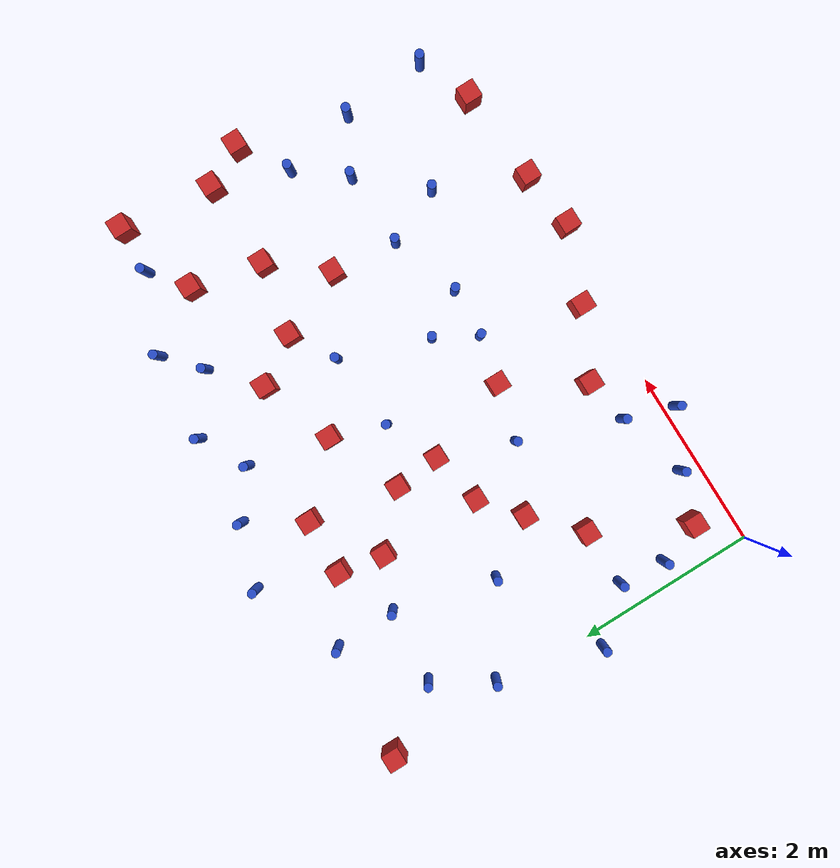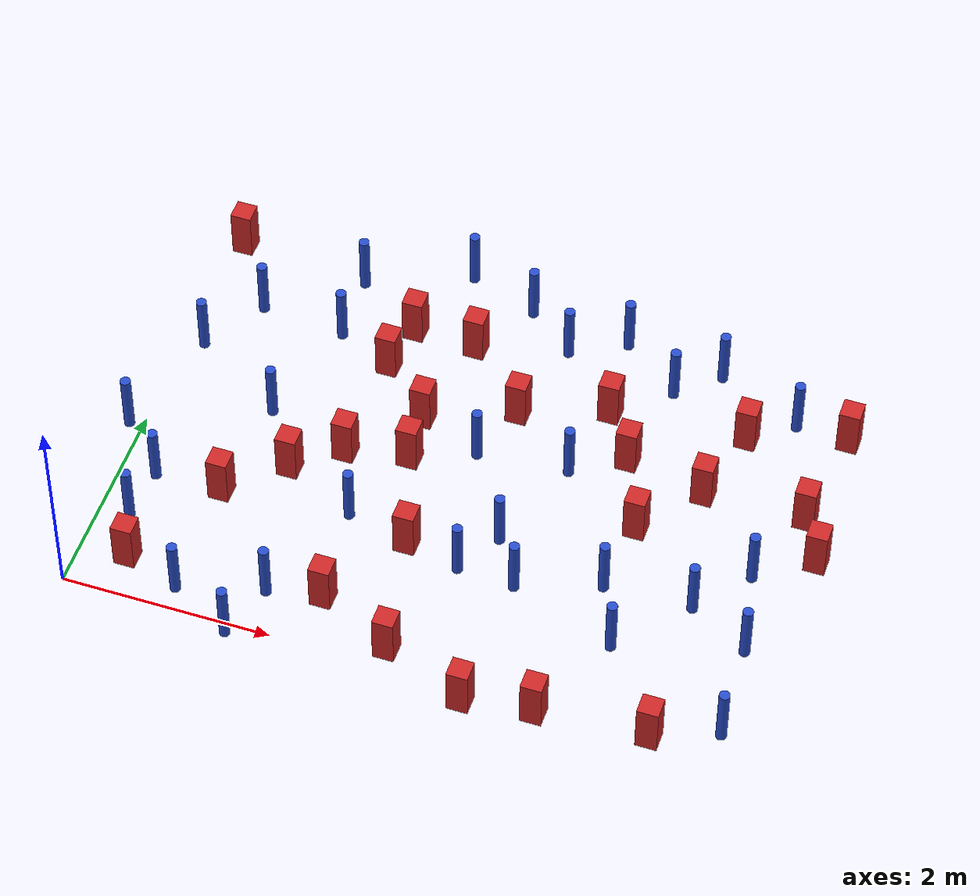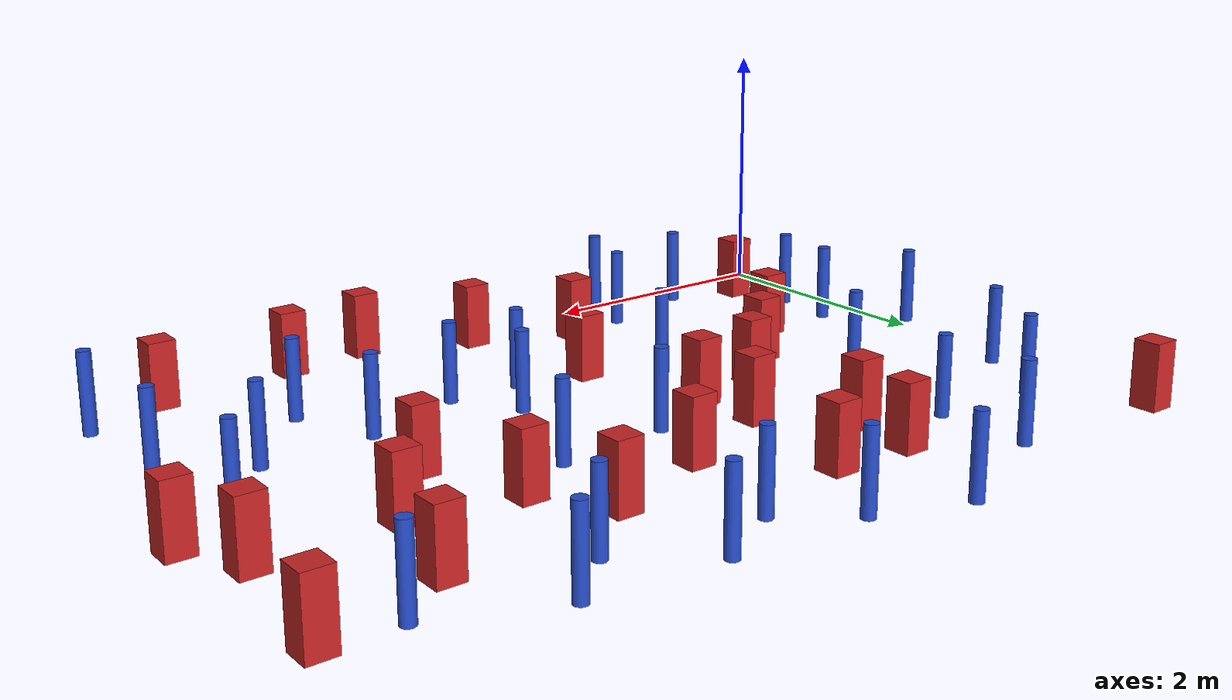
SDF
<sdf version="1.6">
 <model name="dense_8">
  <model name="square_post_obstacle2">
   <static>true</static>
   <pose>2.45403011501 2.84470592228 -6.11067671241e-07 -5.50515727128e-06 -8.79689657224e-07 2.37013304536e-05</pose>
   <link name="link">
    <pose>0 0 0.25 0 -0 0</pose>
    <inertial>
     <mass>100</mass>
     <inertia>
      <ixx>0.166667</ixx>
      <ixy>0</ixy>
      <ixz>0</ixz>
      <iyy>0.166667</iyy>
      <iyz>0</iyz>
      <izz>0.166667</izz>
     </inertia>
    </inertial>
    <collision name="collision"><geometry><box><size>.2 .2 .5</size></box></geometry></collision>
    <visual name="visual">
     <geometry><box><size>.2 .2 .5</size></box></geometry>
     <material>
      <script><name>Gazebo/Red</name><uri>file://media/materials/scripts/gazebo.material</uri></script>
     </material>
    </visual>
   </link>
  </model>
  <model name="pole_obstacle3">
   <static>true</static>
   <pose>1.60951620101 -0.0953287953253 -9.47619616065e-06 5.49618799737e-07 2.36310414064e-07 -1.55090534798e-07</pose>
   <link name="link">
    <pose>0 0 0.3 0 -0 0</pose>
    <inertial>
     <mass>1</mass>
     <inertia><ixx>0.145833</ixx><ixy>0</ixy><ixz>0</ixz><iyy>0.145833</iyy><iyz>0</iyz><izz>0.125</izz></inertia>
    </inertial>
    <collision name="collision">
     <geometry><cylinder><radius>0.05</radius><length>.6</length></cylinder></geometry>
    </collision>
    <visual name="visual">
     <geometry><cylinder><radius>0.05</radius><length>.6</length></cylinder></geometry>
     <material>
      <script><name>Gazebo/Blue</name><uri>file://media/materials/scripts/gazebo.material</uri></script>
     </material>
    </visual>
   </link>
  </model>
  <model name="square_post_obstacle8">
   <static>true</static>
   <pose>3.04568365007 0.186025562738 -6.11067671241e-07 -5.50515727128e-06 -8.79689657224e-07 2.37013304536e-05</pose>
   <link name="link">
    <pose>0 0 0.25 0 -0 0</pose>
    <inertial>
     <mass>100</mass>
     <inertia>
      <ixx>0.166667</ixx>
      <ixy>0</ixy>
      <ixz>0</ixz>
      <iyy>0.166667</iyy>
      <iyz>0</iyz>
      <izz>0.166667</izz>
     </inertia>
    </inertial>
    <collision name="collision"><geometry><box><size>.2 .2 .5</size></box></geometry></collision>
    <visual name="visual">
     <geometry><box><size>.2 .2 .5</size></box></geometry>
     <material>
      <script><name>Gazebo/Red</name><uri>file://media/materials/scripts/gazebo.material</uri></script>
     </material>
    </visual>
   </link>
  </model>
  <model name="square_post_obstacle9">
   <static>true</static>
   <pose>2.64092734206 3.82460072823 -6.11067671241e-07 -5.50515727128e-06 -8.79689657224e-07 2.37013304536e-05</pose>
   <link name="link">
    <pose>0 0 0.25 0 -0 0</pose>
    <inertial>
     <mass>100</mass>
     <inertia>
      <ixx>0.166667</ixx>
      <ixy>0</ixy>
      <ixz>0</ixz>
      <iyy>0.166667</iyy>
      <iyz>0</iyz>
      <izz>0.166667</izz>
     </inertia>
    </inertial>
    <collision name="collision"><geometry><box><size>.2 .2 .5</size></box></geometry></collision>
    <visual name="visual">
     <geometry><box><size>.2 .2 .5</size></box></geometry>
     <material>
      <script><name>Gazebo/Red</name><uri>file://media/materials/scripts/gazebo.material</uri></script>
     </material>
    </visual>
   </link>
  </model>
  <model name="pole_obstacle9">
   <static>true</static>
   <pose>0.166897559963 3.05602028141 -9.4761961606e-06 5.49618799729e-07 2.36310413998e-07 -1.55090534824e-07</pose>
   <link name="link">
    <pose>0 0 0.3 0 -0 0</pose>
    <inertial>
     <mass>1</mass>
     <inertia><ixx>0.145833</ixx><ixy>0</ixy><ixz>0</ixz><iyy>0.145833</iyy><iyz>0</iyz><izz>0.125</izz></inertia>
    </inertial>
    <collision name="collision">
     <geometry><cylinder><radius>0.05</radius><length>.6</length></cylinder></geometry>
    </collision>
    <visual name="visual">
     <geometry><cylinder><radius>0.05</radius><length>.6</length></cylinder></geometry>
     <material>
      <script><name>Gazebo/Blue</name><uri>file://media/materials/scripts/gazebo.material</uri></script>
     </material>
    </visual>
   </link>
  </model>
  <model name="square_post_obstacle19">
   <static>true</static>
   <pose>4.50263359824 -0.0530470735372 -6.11067671241e-07 -5.50515727128e-06 -8.79689657224e-07 2.37013304536e-05</pose>
   <link name="link">
    <pose>0 0 0.25 0 -0 0</pose>
    <inertial>
     <mass>100</mass>
     <inertia>
      <ixx>0.166667</ixx>
      <ixy>0</ixy>
      <ixz>0</ixz>
      <iyy>0.166667</iyy>
      <iyz>0</iyz>
      <izz>0.166667</izz>
     </inertia>
    </inertial>
    <collision name="collision"><geometry><box><size>.2 .2 .5</size></box></geometry></collision>
    <visual name="visual">
     <geometry><box><size>.2 .2 .5</size></box></geometry>
     <material>
      <script><name>Gazebo/Red</name><uri>file://media/materials/scripts/gazebo.material</uri></script>
     </material>
    </visual>
   </link>
  </model>
  <model name="pole_obstacle11">
   <static>true</static>
   <pose>4.00027393497 4.34988775769 -9.47619616065e-06 5.49618799737e-07 2.36310414037e-07 -1.55090534814e-07</pose>
   <link name="link">
    <pose>0 0 0.3 0 -0 0</pose>
    <inertial>
     <mass>1</mass>
     <inertia><ixx>0.145833</ixx><ixy>0</ixy><ixz>0</ixz><iyy>0.145833</iyy><iyz>0</iyz><izz>0.125</izz></inertia>
    </inertial>
    <collision name="collision">
     <geometry><cylinder><radius>0.05</radius><length>.6</length></cylinder></geometry>
    </collision>
    <visual name="visual">
     <geometry><cylinder><radius>0.05</radius><length>.6</length></cylinder></geometry>
     <material>
      <script><name>Gazebo/Blue</name><uri>file://media/materials/scripts/gazebo.material</uri></script>
     </material>
    </visual>
   </link>
  </model>
  <model name="square_post_obstacle27">
   <static>true</static>
   <pose>2.30890300831 0.54974141371 -6.11067671241e-07 -5.50515727128e-06 -8.79689657224e-07 2.37013304536e-05</pose>
   <link name="link">
    <pose>0 0 0.25 0 -0 0</pose>
    <inertial>
     <mass>100</mass>
     <inertia>
      <ixx>0.166667</ixx>
      <ixy>0</ixy>
      <ixz>0</ixz>
      <iyy>0.166667</iyy>
      <iyz>0</iyz>
      <izz>0.166667</izz>
     </inertia>
    </inertial>
    <collision name="collision"><geometry><box><size>.2 .2 .5</size></box></geometry></collision>
    <visual name="visual">
     <geometry><box><size>.2 .2 .5</size></box></geometry>
     <material>
      <script><name>Gazebo/Red</name><uri>file://media/materials/scripts/gazebo.material</uri></script>
     </material>
    </visual>
   </link>
  </model>
  <model name="pole_obstacle22">
   <static>true</static>
   <pose>0.340326180801 1.39975027802 -9.47619616065e-06 5.49618799738e-07 2.3631041406e-07 -1.550905348e-07</pose>
   <link name="link">
    <pose>0 0 0.3 0 -0 0</pose>
    <inertial>
     <mass>1</mass>
     <inertia><ixx>0.145833</ixx><ixy>0</ixy><ixz>0</ixz><iyy>0.145833</iyy><iyz>0</iyz><izz>0.125</izz></inertia>
    </inertial>
    <collision name="collision">
     <geometry><cylinder><radius>0.05</radius><length>.6</length></cylinder></geometry>
    </collision>
    <visual name="visual">
     <geometry><cylinder><radius>0.05</radius><length>.6</length></cylinder></geometry>
     <material>
      <script><name>Gazebo/Blue</name><uri>file://media/materials/scripts/gazebo.material</uri></script>
     </material>
    </visual>
   </link>
  </model>
  <model name="pole_obstacle27">
   <static>true</static>
   <pose>1.35018914964 4.2849601545 -9.47619616065e-06 5.49618799737e-07 2.36310414061e-07 -1.550905348e-07</pose>
   <link name="link">
    <pose>0 0 0.3 0 -0 0</pose>
    <inertial>
     <mass>1</mass>
     <inertia><ixx>0.145833</ixx><ixy>0</ixy><ixz>0</ixz><iyy>0.145833</iyy><iyz>0</iyz><izz>0.125</izz></inertia>
    </inertial>
    <collision name="collision">
     <geometry><cylinder><radius>0.05</radius><length>.6</length></cylinder></geometry>
    </collision>
    <visual name="visual">
     <geometry><cylinder><radius>0.05</radius><length>.6</length></cylinder></geometry>
     <material>
      <script><name>Gazebo/Blue</name><uri>file://media/materials/scripts/gazebo.material</uri></script>
     </material>
    </visual>
   </link>
  </model>
  <model name="square_post_obstacle41">
   <static>true</static>
   <pose>4.42364671763 2.96260429846 -6.11067671241e-07 -5.50515727128e-06 -8.79689657224e-07 2.37013304536e-05</pose>
   <link name="link">
    <pose>0 0 0.25 0 -0 0</pose>
    <inertial>
     <mass>100</mass>
     <inertia>
      <ixx>0.166667</ixx>
      <ixy>0</ixy>
      <ixz>0</ixz>
      <iyy>0.166667</iyy>
      <iyz>0</iyz>
      <izz>0.166667</izz>
     </inertia>
    </inertial>
    <collision name="collision"><geometry><box><size>.2 .2 .5</size></box></geometry></collision>
    <visual name="visual">
     <geometry><box><size>.2 .2 .5</size></box></geometry>
     <material>
      <script><name>Gazebo/Red</name><uri>file://media/materials/scripts/gazebo.material</uri></script>
     </material>
    </visual>
   </link>
  </model>
  <model name="pole_obstacle50">
   <static>true</static>
   <pose>1.08501009627 2.47537777412 -9.47619616065e-06 5.49618799737e-07 2.36310414062e-07 -1.55090534798e-07</pose>
   <link name="link">
    <pose>0 0 0.3 0 -0 0</pose>
    <inertial>
     <mass>1</mass>
     <inertia><ixx>0.145833</ixx><ixy>0</ixy><ixz>0</ixz><iyy>0.145833</iyy><iyz>0</iyz><izz>0.125</izz></inertia>
    </inertial>
    <collision name="collision">
     <geometry><cylinder><radius>0.05</radius><length>.6</length></cylinder></geometry>
    </collision>
    <visual name="visual">
     <geometry><cylinder><radius>0.05</radius><length>.6</length></cylinder></geometry>
     <material>
      <script><name>Gazebo/Blue</name><uri>file://media/materials/scripts/gazebo.material</uri></script>
     </material>
    </visual>
   </link>
  </model>
  <model name="pole_obstacle54">
   <static>true</static>
   <pose>-0.133966401994 1.90876942471 -9.47619616065e-06 5.49618799737e-07 2.36310414067e-07 -1.55090534796e-07</pose>
   <link name="link">
    <pose>0 0 0.3 0 -0 0</pose>
    <inertial>
     <mass>1</mass>
     <inertia><ixx>0.145833</ixx><ixy>0</ixy><ixz>0</ixz><iyy>0.145833</iyy><iyz>0</iyz><izz>0.125</izz></inertia>
    </inertial>
    <collision name="collision">
     <geometry><cylinder><radius>0.05</radius><length>.6</length></cylinder></geometry>
    </collision>
    <visual name="visual">
     <geometry><cylinder><radius>0.05</radius><length>.6</length></cylinder></geometry>
     <material>
      <script><name>Gazebo/Blue</name><uri>file://media/materials/scripts/gazebo.material</uri></script>
     </material>
    </visual>
   </link>
  </model>
  <model name="pole_obstacle55">
   <static>true</static>
   <pose>0.288868539936 0.885942822185 -9.47619616065e-06 5.49618799738e-07 2.36310414056e-07 -1.55090534803e-07</pose>
   <link name="link">
    <pose>0 0 0.3 0 -0 0</pose>
    <inertial>
     <mass>1</mass>
     <inertia><ixx>0.145833</ixx><ixy>0</ixy><ixz>0</ixz><iyy>0.145833</iyy><iyz>0</iyz><izz>0.125</izz></inertia>
    </inertial>
    <collision name="collision">
     <geometry><cylinder><radius>0.05</radius><length>.6</length></cylinder></geometry>
    </collision>
    <visual name="visual">
     <geometry><cylinder><radius>0.05</radius><length>.6</length></cylinder></geometry>
     <material>
      <script><name>Gazebo/Blue</name><uri>file://media/materials/scripts/gazebo.material</uri></script>
     </material>
    </visual>
   </link>
  </model>
  <model name="square_post_obstacle58">
   <static>true</static>
   <pose>4.73409323332 2.21882491592 -6.11067671241e-07 -5.50515727128e-06 -8.79689657224e-07 2.37013304536e-05</pose>
   <link name="link">
    <pose>0 0 0.25 0 -0 0</pose>
    <inertial>
     <mass>100</mass>
     <inertia>
      <ixx>0.166667</ixx>
      <ixy>0</ixy>
      <ixz>0</ixz>
      <iyy>0.166667</iyy>
      <iyz>0</iyz>
      <izz>0.166667</izz>
     </inertia>
    </inertial>
    <collision name="collision"><geometry><box><size>.2 .2 .5</size></box></geometry></collision>
    <visual name="visual">
     <geometry><box><size>.2 .2 .5</size></box></geometry>
     <material>
      <script><name>Gazebo/Red</name><uri>file://media/materials/scripts/gazebo.material</uri></script>
     </material>
    </visual>
   </link>
  </model>
  <model name="pole_obstacle57">
   <static>true</static>
   <pose>3.94204193358 2.67132849761 -9.47619616065e-06 5.49618799737e-07 2.36310414051e-07 -1.55090534807e-07</pose>
   <link name="link">
    <pose>0 0 0.3 0 -0 0</pose>
    <inertial>
     <mass>1</mass>
     <inertia><ixx>0.145833</ixx><ixy>0</ixy><ixz>0</ixz><iyy>0.145833</iyy><iyz>0</iyz><izz>0.125</izz></inertia>
    </inertial>
    <collision name="collision">
     <geometry><cylinder><radius>0.05</radius><length>.6</length></cylinder></geometry>
    </collision>
    <visual name="visual">
     <geometry><cylinder><radius>0.05</radius><length>.6</length></cylinder></geometry>
     <material>
      <script><name>Gazebo/Blue</name><uri>file://media/materials/scripts/gazebo.material</uri></script>
     </material>
    </visual>
   </link>
  </model>
  <model name="square_post_obstacle63">
   <static>true</static>
   <pose>1.48611725219 1.87298959567 -6.11067671241e-07 -5.50515727128e-06 -8.79689657224e-07 2.37013304536e-05</pose>
   <link name="link">
    <pose>0 0 0.25 0 -0 0</pose>
    <inertial>
     <mass>100</mass>
     <inertia>
      <ixx>0.166667</ixx>
      <ixy>0</ixy>
      <ixz>0</ixz>
      <iyy>0.166667</iyy>
      <iyz>0</iyz>
      <izz>0.166667</izz>
     </inertia>
    </inertial>
    <collision name="collision"><geometry><box><size>.2 .2 .5</size></box></geometry></collision>
    <visual name="visual">
     <geometry><box><size>.2 .2 .5</size></box></geometry>
     <material>
      <script><name>Gazebo/Red</name><uri>file://media/materials/scripts/gazebo.material</uri></script>
     </material>
    </visual>
   </link>
  </model>
  <model name="pole_obstacle61">
   <static>true</static>
   <pose>0.540656722937 3.66856565822 -9.47619616065e-06 5.49618799737e-07 2.36310414069e-07 -1.55090534796e-07</pose>
   <link name="link">
    <pose>0 0 0.3 0 -0 0</pose>
    <inertial>
     <mass>1</mass>
     <inertia><ixx>0.145833</ixx><ixy>0</ixy><ixz>0</ixz><iyy>0.145833</iyy><iyz>0</iyz><izz>0.125</izz></inertia>
    </inertial>
    <collision name="collision">
     <geometry><cylinder><radius>0.05</radius><length>.6</length></cylinder></geometry>
    </collision>
    <visual name="visual">
     <geometry><cylinder><radius>0.05</radius><length>.6</length></cylinder></geometry>
     <material>
      <script><name>Gazebo/Blue</name><uri>file://media/materials/scripts/gazebo.material</uri></script>
     </material>
    </visual>
   </link>
  </model>
  <model name="square_post_obstacle66">
   <static>true</static>
   <pose>3.2789490071 3.17853277757 -6.11067671241e-07 -5.50515727128e-06 -8.79689657224e-07 2.37013304536e-05</pose>
   <link name="link">
    <pose>0 0 0.25 0 -0 0</pose>
    <inertial>
     <mass>100</mass>
     <inertia>
      <ixx>0.166667</ixx>
      <ixy>0</ixy>
      <ixz>0</ixz>
      <iyy>0.166667</iyy>
      <iyz>0</iyz>
      <izz>0.166667</izz>
     </inertia>
    </inertial>
    <collision name="collision"><geometry><box><size>.2 .2 .5</size></box></geometry></collision>
    <visual name="visual">
     <geometry><box><size>.2 .2 .5</size></box></geometry>
     <material>
      <script><name>Gazebo/Red</name><uri>file://media/materials/scripts/gazebo.material</uri></script>
     </material>
    </visual>
   </link>
  </model>
  <model name="pole_obstacle66">
   <static>true</static>
   <pose>6.06449971869 1.20316697286 -9.47619616065e-06 5.49618799738e-07 2.36310414071e-07 -1.55090534796e-07</pose>
   <link name="link">
    <pose>0 0 0.3 0 -0 0</pose>
    <inertial>
     <mass>1</mass>
     <inertia><ixx>0.145833</ixx><ixy>0</ixy><ixz>0</ixz><iyy>0.145833</iyy><iyz>0</iyz><izz>0.125</izz></inertia>
    </inertial>
    <collision name="collision">
     <geometry><cylinder><radius>0.05</radius><length>.6</length></cylinder></geometry>
    </collision>
    <visual name="visual">
     <geometry><cylinder><radius>0.05</radius><length>.6</length></cylinder></geometry>
     <material>
      <script><name>Gazebo/Blue</name><uri>file://media/materials/scripts/gazebo.material</uri></script>
     </material>
    </visual>
   </link>
  </model>
  <model name="pole_obstacle68">
   <static>true</static>
   <pose>2.19670817189 1.53268188798 -9.47619616065e-06 5.49618799737e-07 2.36310414072e-07 -1.55090534793e-07</pose>
   <link name="link">
    <pose>0 0 0.3 0 -0 0</pose>
    <inertial>
     <mass>1</mass>
     <inertia><ixx>0.145833</ixx><ixy>0</ixy><ixz>0</ixz><iyy>0.145833</iyy><iyz>0</iyz><izz>0.125</izz></inertia>
    </inertial>
    <collision name="collision">
     <geometry><cylinder><radius>0.05</radius><length>.6</length></cylinder></geometry>
    </collision>
    <visual name="visual">
     <geometry><cylinder><radius>0.05</radius><length>.6</length></cylinder></geometry>
     <material>
      <script><name>Gazebo/Blue</name><uri>file://media/materials/scripts/gazebo.material</uri></script>
     </material>
    </visual>
   </link>
  </model>
  <model name="square_post_obstacle72">
   <static>true</static>
   <pose>2.81278803681 1.37709847575 -6.11067671241e-07 -5.50515727128e-06 -8.79689657224e-07 2.37013304536e-05</pose>
   <link name="link">
    <pose>0 0 0.25 0 -0 0</pose>
    <inertial>
     <mass>100</mass>
     <inertia>
      <ixx>0.166667</ixx>
      <ixy>0</ixy>
      <ixz>0</ixz>
      <iyy>0.166667</iyy>
      <iyz>0</iyz>
      <izz>0.166667</izz>
     </inertia>
    </inertial>
    <collision name="collision"><geometry><box><size>.2 .2 .5</size></box></geometry></collision>
    <visual name="visual">
     <geometry><box><size>.2 .2 .5</size></box></geometry>
     <material>
      <script><name>Gazebo/Red</name><uri>file://media/materials/scripts/gazebo.material</uri></script>
     </material>
    </visual>
   </link>
  </model>
  <model name="square_post_obstacle75">
   <static>true</static>
   <pose>1.9319834742 3.34947081611 -6.11067671241e-07 -5.50515727128e-06 -8.79689657224e-07 2.37013304536e-05</pose>
   <link name="link">
    <pose>0 0 0.25 0 -0 0</pose>
    <inertial>
     <mass>100</mass>
     <inertia>
      <ixx>0.166667</ixx>
      <ixy>0</ixy>
      <ixz>0</ixz>
      <iyy>0.166667</iyy>
      <iyz>0</iyz>
      <izz>0.166667</izz>
     </inertia>
    </inertial>
    <collision name="collision"><geometry><box><size>.2 .2 .5</size></box></geometry></collision>
    <visual name="visual">
     <geometry><box><size>.2 .2 .5</size></box></geometry>
     <material>
      <script><name>Gazebo/Red</name><uri>file://media/materials/scripts/gazebo.material</uri></script>
     </material>
    </visual>
   </link>
  </model>
  <model name="pole_obstacle73">
   <static>true</static>
   <pose>6.12441952049 0.264928909685 -9.47619616065e-06 5.49618799737e-07 2.3631041406e-07 -1.550905348e-07</pose>
   <link name="link">
    <pose>0 0 0.3 0 -0 0</pose>
    <inertial>
     <mass>1</mass>
     <inertia><ixx>0.145833</ixx><ixy>0</ixy><ixz>0</ixz><iyy>0.145833</iyy><iyz>0</iyz><izz>0.125</izz></inertia>
    </inertial>
    <collision name="collision">
     <geometry><cylinder><radius>0.05</radius><length>.6</length></cylinder></geometry>
    </collision>
    <visual name="visual">
     <geometry><cylinder><radius>0.05</radius><length>.6</length></cylinder></geometry>
     <material>
      <script><name>Gazebo/Blue</name><uri>file://media/materials/scripts/gazebo.material</uri></script>
     </material>
    </visual>
   </link>
  </model>
  <model name="pole_obstacle75">
   <static>true</static>
   <pose>5.89192949879 2.02843567691 -9.47619616065e-06 5.49618799737e-07 2.36310414065e-07 -1.55090534797e-07</pose>
   <link name="link">
    <pose>0 0 0.3 0 -0 0</pose>
    <inertial>
     <mass>1</mass>
     <inertia><ixx>0.145833</ixx><ixy>0</ixy><ixz>0</ixz><iyy>0.145833</iyy><iyz>0</iyz><izz>0.125</izz></inertia>
    </inertial>
    <collision name="collision">
     <geometry><cylinder><radius>0.05</radius><length>.6</length></cylinder></geometry>
    </collision>
    <visual name="visual">
     <geometry><cylinder><radius>0.05</radius><length>.6</length></cylinder></geometry>
     <material>
      <script><name>Gazebo/Blue</name><uri>file://media/materials/scripts/gazebo.material</uri></script>
     </material>
    </visual>
   </link>
  </model>
  <model name="pole_obstacle76">
   <static>true</static>
   <pose>3.48642598903 4.07143372269 -9.47619616065e-06 5.49618799738e-07 2.3631041406e-07 -1.55090534801e-07</pose>
   <link name="link">
    <pose>0 0 0.3 0 -0 0</pose>
    <inertial>
     <mass>1</mass>
     <inertia><ixx>0.145833</ixx><ixy>0</ixy><ixz>0</ixz><iyy>0.145833</iyy><iyz>0</iyz><izz>0.125</izz></inertia>
    </inertial>
    <collision name="collision">
     <geometry><cylinder><radius>0.05</radius><length>.6</length></cylinder></geometry>
    </collision>
    <visual name="visual">
     <geometry><cylinder><radius>0.05</radius><length>.6</length></cylinder></geometry>
     <material>
      <script><name>Gazebo/Blue</name><uri>file://media/materials/scripts/gazebo.material</uri></script>
     </material>
    </visual>
   </link>
  </model>
  <model name="pole_obstacle91">
   <static>true</static>
   <pose>4.91735121988 0.873259632748 -9.47619616065e-06 5.49618799737e-07 2.36310414061e-07 -1.550905348e-07</pose>
   <link name="link">
    <pose>0 0 0.3 0 -0 0</pose>
    <inertial>
     <mass>1</mass>
     <inertia><ixx>0.145833</ixx><ixy>0</ixy><ixz>0</ixz><iyy>0.145833</iyy><iyz>0</iyz><izz>0.125</izz></inertia>
    </inertial>
    <collision name="collision">
     <geometry><cylinder><radius>0.05</radius><length>.6</length></cylinder></geometry>
    </collision>
    <visual name="visual">
     <geometry><cylinder><radius>0.05</radius><length>.6</length></cylinder></geometry>
     <material>
      <script><name>Gazebo/Blue</name><uri>file://media/materials/scripts/gazebo.material</uri></script>
     </material>
    </visual>
   </link>
  </model>
  <model name="pole_obstacle95">
   <static>true</static>
   <pose>2.3296836631 4.69241225514 -9.47619616065e-06 5.49618799738e-07 2.3631041406e-07 -1.55090534801e-07</pose>
   <link name="link">
    <pose>0 0 0.3 0 -0 0</pose>
    <inertial>
     <mass>1</mass>
     <inertia><ixx>0.145833</ixx><ixy>0</ixy><ixz>0</ixz><iyy>0.145833</iyy><iyz>0</iyz><izz>0.125</izz></inertia>
    </inertial>
    <collision name="collision">
     <geometry><cylinder><radius>0.05</radius><length>.6</length></cylinder></geometry>
    </collision>
    <visual name="visual">
     <geometry><cylinder><radius>0.05</radius><length>.6</length></cylinder></geometry>
     <material>
      <script><name>Gazebo/Blue</name><uri>file://media/materials/scripts/gazebo.material</uri></script>
     </material>
    </visual>
   </link>
  </model>
  <model name="square_post_obstacle98">
   <static>true</static>
   <pose>4.09499771162 3.46620073269 -6.11067671241e-07 -5.50515727128e-06 -8.79689657224e-07 2.37013304536e-05</pose>
   <link name="link">
    <pose>0 0 0.25 0 -0 0</pose>
    <inertial>
     <mass>100</mass>
     <inertia>
      <ixx>0.166667</ixx>
      <ixy>0</ixy>
      <ixz>0</ixz>
      <iyy>0.166667</iyy>
      <iyz>0</iyz>
      <izz>0.166667</izz>
     </inertia>
    </inertial>
    <collision name="collision"><geometry><box><size>.2 .2 .5</size></box></geometry></collision>
    <visual name="visual">
     <geometry><box><size>.2 .2 .5</size></box></geometry>
     <material>
      <script><name>Gazebo/Red</name><uri>file://media/materials/scripts/gazebo.material</uri></script>
     </material>
    </visual>
   </link>
  </model>
  <model name="pole_obstacle113">
   <static>true</static>
   <pose>1.00548059532 0.22671719849 -9.47619616065e-06 5.49618799738e-07 2.36310414064e-07 -1.55090534797e-07</pose>
   <link name="link">
    <pose>0 0 0.3 0 -0 0</pose>
    <inertial>
     <mass>1</mass>
     <inertia><ixx>0.145833</ixx><ixy>0</ixy><ixz>0</ixz><iyy>0.145833</iyy><iyz>0</iyz><izz>0.125</izz></inertia>
    </inertial>
    <collision name="collision">
     <geometry><cylinder><radius>0.05</radius><length>.6</length></cylinder></geometry>
    </collision>
    <visual name="visual">
     <geometry><cylinder><radius>0.05</radius><length>.6</length></cylinder></geometry>
     <material>
      <script><name>Gazebo/Blue</name><uri>file://media/materials/scripts/gazebo.material</uri></script>
     </material>
    </visual>
   </link>
  </model>
  <model name="square_post_obstacle109">
   <static>true</static>
   <pose>6.39985033564 2.36949017189 -6.11067671241e-07 -5.50515727128e-06 -8.79689657224e-07 2.37013304536e-05</pose>
   <link name="link">
    <pose>0 0 0.25 0 -0 0</pose>
    <inertial>
     <mass>100</mass>
     <inertia>
      <ixx>0.166667</ixx>
      <ixy>0</ixy>
      <ixz>0</ixz>
      <iyy>0.166667</iyy>
      <iyz>0</iyz>
      <izz>0.166667</izz>
     </inertia>
    </inertial>
    <collision name="collision"><geometry><box><size>.2 .2 .5</size></box></geometry></collision>
    <visual name="visual">
     <geometry><box><size>.2 .2 .5</size></box></geometry>
     <material>
      <script><name>Gazebo/Red</name><uri>file://media/materials/scripts/gazebo.material</uri></script>
     </material>
    </visual>
   </link>
  </model>
  <model name="pole_obstacle123">
   <static>true</static>
   <pose>3.0117730331 4.44617282377 -9.47619616065e-06 5.49618799738e-07 2.3631041406e-07 -1.55090534801e-07</pose>
   <link name="link">
    <pose>0 0 0.3 0 -0 0</pose>
    <inertial>
     <mass>1</mass>
     <inertia><ixx>0.145833</ixx><ixy>0</ixy><ixz>0</ixz><iyy>0.145833</iyy><iyz>0</iyz><izz>0.125</izz></inertia>
    </inertial>
    <collision name="collision">
     <geometry><cylinder><radius>0.05</radius><length>.6</length></cylinder></geometry>
    </collision>
    <visual name="visual">
     <geometry><cylinder><radius>0.05</radius><length>.6</length></cylinder></geometry>
     <material>
      <script><name>Gazebo/Blue</name><uri>file://media/materials/scripts/gazebo.material</uri></script>
     </material>
    </visual>
   </link>
  </model>
  <model name="square_post_obstacle116">
   <static>true</static>
   <pose>5.53704041023 0.0246563115403 -6.11067671241e-07 -5.50515727128e-06 -8.79689657224e-07 2.37013304536e-05</pose>
   <link name="link">
    <pose>0 0 0.25 0 -0 0</pose>
    <inertial>
     <mass>100</mass>
     <inertia>
      <ixx>0.166667</ixx>
      <ixy>0</ixy>
      <ixz>0</ixz>
      <iyy>0.166667</iyy>
      <iyz>0</iyz>
      <izz>0.166667</izz>
     </inertia>
    </inertial>
    <collision name="collision"><geometry><box><size>.2 .2 .5</size></box></geometry></collision>
    <visual name="visual">
     <geometry><box><size>.2 .2 .5</size></box></geometry>
     <material>
      <script><name>Gazebo/Red</name><uri>file://media/materials/scripts/gazebo.material</uri></script>
     </material>
    </visual>
   </link>
  </model>
  <model name="square_post_obstacle117">
   <static>true</static>
   <pose>5.39380302013 3.57061827399 -6.11067671241e-07 -5.50515727128e-06 -8.79689657224e-07 2.37013304536e-05</pose>
   <link name="link">
    <pose>0 0 0.25 0 -0 0</pose>
    <inertial>
     <mass>100</mass>
     <inertia>
      <ixx>0.166667</ixx>
      <ixy>0</ixy>
      <ixz>0</ixz>
      <iyy>0.166667</iyy>
      <iyz>0</iyz>
      <izz>0.166667</izz>
     </inertia>
    </inertial>
    <collision name="collision"><geometry><box><size>.2 .2 .5</size></box></geometry></collision>
    <visual name="visual">
     <geometry><box><size>.2 .2 .5</size></box></geometry>
     <material>
      <script><name>Gazebo/Red</name><uri>file://media/materials/scripts/gazebo.material</uri></script>
     </material>
    </visual>
   </link>
  </model>
  <model name="square_post_obstacle121">
   <static>true</static>
   <pose>0.0754675092042 4.38259778923 -6.11067671241e-07 -5.50515727128e-06 -8.79689657224e-07 2.37013304536e-05</pose>
   <link name="link">
    <pose>0 0 0.25 0 -0 0</pose>
    <inertial>
     <mass>100</mass>
     <inertia>
      <ixx>0.166667</ixx>
      <ixy>0</ixy>
      <ixz>0</ixz>
      <iyy>0.166667</iyy>
      <iyz>0</iyz>
      <izz>0.166667</izz>
     </inertia>
    </inertial>
    <collision name="collision"><geometry><box><size>.2 .2 .5</size></box></geometry></collision>
    <visual name="visual">
     <geometry><box><size>.2 .2 .5</size></box></geometry>
     <material>
      <script><name>Gazebo/Red</name><uri>file://media/materials/scripts/gazebo.material</uri></script>
     </material>
    </visual>
   </link>
  </model>
  <model name="square_post_obstacle128">
   <static>true</static>
   <pose>0.989676258008 1.41154958317 -6.11067671241e-07 -5.50515727128e-06 -8.79689657224e-07 2.37013304536e-05</pose>
   <link name="link">
    <pose>0 0 0.25 0 -0 0</pose>
    <inertial>
     <mass>100</mass>
     <inertia>
      <ixx>0.166667</ixx>
      <ixy>0</ixy>
      <ixz>0</ixz>
      <iyy>0.166667</iyy>
      <iyz>0</iyz>
      <izz>0.166667</izz>
     </inertia>
    </inertial>
    <collision name="collision"><geometry><box><size>.2 .2 .5</size></box></geometry></collision>
    <visual name="visual">
     <geometry><box><size>.2 .2 .5</size></box></geometry>
     <material>
      <script><name>Gazebo/Red</name><uri>file://media/materials/scripts/gazebo.material</uri></script>
     </material>
    </visual>
   </link>
  </model>
  <model name="pole_obstacle155">
   <static>true</static>
   <pose>5.48355185224 1.51869304675 -9.47619616065e-06 5.49618799738e-07 2.36310414071e-07 -1.55090534796e-07</pose>
   <link name="link">
    <pose>0 0 0.3 0 -0 0</pose>
    <inertial>
     <mass>1</mass>
     <inertia><ixx>0.145833</ixx><ixy>0</ixy><ixz>0</ixz><iyy>0.145833</iyy><iyz>0</iyz><izz>0.125</izz></inertia>
    </inertial>
    <collision name="collision">
     <geometry><cylinder><radius>0.05</radius><length>.6</length></cylinder></geometry>
    </collision>
    <visual name="visual">
     <geometry><cylinder><radius>0.05</radius><length>.6</length></cylinder></geometry>
     <material>
      <script><name>Gazebo/Blue</name><uri>file://media/materials/scripts/gazebo.material</uri></script>
     </material>
    </visual>
   </link>
  </model>
  <model name="pole_obstacle160">
   <static>true</static>
   <pose>4.65492944159 1.4909090895 -9.47619616065e-06 5.49618799738e-07 2.36310414071e-07 -1.55090534796e-07</pose>
   <link name="link">
    <pose>0 0 0.3 0 -0 0</pose>
    <inertial>
     <mass>1</mass>
     <inertia><ixx>0.145833</ixx><ixy>0</ixy><ixz>0</ixz><iyy>0.145833</iyy><iyz>0</iyz><izz>0.125</izz></inertia>
    </inertial>
    <collision name="collision">
     <geometry><cylinder><radius>0.05</radius><length>.6</length></cylinder></geometry>
    </collision>
    <visual name="visual">
     <geometry><cylinder><radius>0.05</radius><length>.6</length></cylinder></geometry>
     <material>
      <script><name>Gazebo/Blue</name><uri>file://media/materials/scripts/gazebo.material</uri></script>
     </material>
    </visual>
   </link>
  </model>
  <model name="square_post_obstacle156">
   <static>true</static>
   <pose>6.30170269562 3.84891209482 -6.11067671241e-07 -5.50515727128e-06 -8.79689657224e-07 2.37013304536e-05</pose>
   <link name="link">
    <pose>0 0 0.25 0 -0 0</pose>
    <inertial>
     <mass>100</mass>
     <inertia>
      <ixx>0.166667</ixx>
      <ixy>0</ixy>
      <ixz>0</ixz>
      <iyy>0.166667</iyy>
      <iyz>0</iyz>
      <izz>0.166667</izz>
     </inertia>
    </inertial>
    <collision name="collision"><geometry><box><size>.2 .2 .5</size></box></geometry></collision>
    <visual name="visual">
     <geometry><box><size>.2 .2 .5</size></box></geometry>
     <material>
      <script><name>Gazebo/Red</name><uri>file://media/materials/scripts/gazebo.material</uri></script>
     </material>
    </visual>
   </link>
  </model>
  <model name="pole_obstacle166">
   <static>true</static>
   <pose>3.88949240759 1.23049291903 -9.47619616065e-06 5.49618799737e-07 2.36310414072e-07 -1.55090534793e-07</pose>
   <link name="link">
    <pose>0 0 0.3 0 -0 0</pose>
    <inertial>
     <mass>1</mass>
     <inertia><ixx>0.145833</ixx><ixy>0</ixy><ixz>0</ixz><iyy>0.145833</iyy><iyz>0</iyz><izz>0.125</izz></inertia>
    </inertial>
    <collision name="collision">
     <geometry><cylinder><radius>0.05</radius><length>.6</length></cylinder></geometry>
    </collision>
    <visual name="visual">
     <geometry><cylinder><radius>0.05</radius><length>.6</length></cylinder></geometry>
     <material>
      <script><name>Gazebo/Blue</name><uri>file://media/materials/scripts/gazebo.material</uri></script>
     </material>
    </visual>
   </link>
  </model>
  <model name="square_post_obstacle160">
   <static>true</static>
   <pose>3.85158098312 -0.136917456022 -6.11067671241e-07 -5.50515727128e-06 -8.79689657224e-07 2.37013304536e-05</pose>
   <link name="link">
    <pose>0 0 0.25 0 -0 0</pose>
    <inertial>
     <mass>100</mass>
     <inertia>
      <ixx>0.166667</ixx>
      <ixy>0</ixy>
      <ixz>0</ixz>
      <iyy>0.166667</iyy>
      <iyz>0</iyz>
      <izz>0.166667</izz>
     </inertia>
    </inertial>
    <collision name="collision"><geometry><box><size>.2 .2 .5</size></box></geometry></collision>
    <visual name="visual">
     <geometry><box><size>.2 .2 .5</size></box></geometry>
     <material>
      <script><name>Gazebo/Red</name><uri>file://media/materials/scripts/gazebo.material</uri></script>
     </material>
    </visual>
   </link>
  </model>
  <model name="square_post_obstacle161">
   <static>true</static>
   <pose>2.02180369748 3.84964573999 -6.11067671241e-07 -5.50515727128e-06 -8.79689657224e-07 2.37013304536e-05</pose>
   <link name="link">
    <pose>0 0 0.25 0 -0 0</pose>
    <inertial>
     <mass>100</mass>
     <inertia>
      <ixx>0.166667</ixx>
      <ixy>0</ixy>
      <ixz>0</ixz>
      <iyy>0.166667</iyy>
      <iyz>0</iyz>
      <izz>0.166667</izz>
     </inertia>
    </inertial>
    <collision name="collision"><geometry><box><size>.2 .2 .5</size></box></geometry></collision>
    <visual name="visual">
     <geometry><box><size>.2 .2 .5</size></box></geometry>
     <material>
      <script><name>Gazebo/Red</name><uri>file://media/materials/scripts/gazebo.material</uri></script>
     </material>
    </visual>
   </link>
  </model>
  <model name="pole_obstacle173">
   <static>true</static>
   <pose>4.96482589029 4.24393029031 -9.47619616065e-06 5.49618799737e-07 2.36310414037e-07 -1.55090534814e-07</pose>
   <link name="link">
    <pose>0 0 0.3 0 -0 0</pose>
    <inertial>
     <mass>1</mass>
     <inertia><ixx>0.145833</ixx><ixy>0</ixy><ixz>0</ixz><iyy>0.145833</iyy><iyz>0</iyz><izz>0.125</izz></inertia>
    </inertial>
    <collision name="collision">
     <geometry><cylinder><radius>0.05</radius><length>.6</length></cylinder></geometry>
    </collision>
    <visual name="visual">
     <geometry><cylinder><radius>0.05</radius><length>.6</length></cylinder></geometry>
     <material>
      <script><name>Gazebo/Blue</name><uri>file://media/materials/scripts/gazebo.material</uri></script>
     </material>
    </visual>
   </link>
  </model>
  <model name="square_post_obstacle166">
   <static>true</static>
   <pose>0.463530866503 0.417077782172 -6.11067671241e-07 -5.50515727128e-06 -8.79689657224e-07 2.37013304536e-05</pose>
   <link name="link">
    <pose>0 0 0.25 0 -0 0</pose>
    <inertial>
     <mass>100</mass>
     <inertia>
      <ixx>0.166667</ixx>
      <ixy>0</ixy>
      <ixz>0</ixz>
      <iyy>0.166667</iyy>
      <iyz>0</iyz>
      <izz>0.166667</izz>
     </inertia>
    </inertial>
    <collision name="collision"><geometry><box><size>.2 .2 .5</size></box></geometry></collision>
    <visual name="visual">
     <geometry><box><size>.2 .2 .5</size></box></geometry>
     <material>
      <script><name>Gazebo/Red</name><uri>file://media/materials/scripts/gazebo.material</uri></script>
     </material>
    </visual>
   </link>
  </model>
  <model name="square_post_obstacle178">
   <static>true</static>
   <pose>2.4980249438 2.33890018392 -6.11067671241e-07 -5.50515727128e-06 -8.79689657224e-07 2.37013304536e-05</pose>
   <link name="link">
    <pose>0 0 0.25 0 -0 0</pose>
    <inertial>
     <mass>100</mass>
     <inertia>
      <ixx>0.166667</ixx>
      <ixy>0</ixy>
      <ixz>0</ixz>
      <iyy>0.166667</iyy>
      <iyz>0</iyz>
      <izz>0.166667</izz>
     </inertia>
    </inertial>
    <collision name="collision"><geometry><box><size>.2 .2 .5</size></box></geometry></collision>
    <visual name="visual">
     <geometry><box><size>.2 .2 .5</size></box></geometry>
     <material>
      <script><name>Gazebo/Red</name><uri>file://media/materials/scripts/gazebo.material</uri></script>
     </material>
    </visual>
   </link>
  </model>
  <model name="square_post_obstacle188">
   <static>true</static>
   <pose>6.16935457173 2.82097435387 -6.11067671241e-07 -5.50515727128e-06 -8.79689657224e-07 2.37013304536e-05</pose>
   <link name="link">
    <pose>0 0 0.25 0 -0 0</pose>
    <inertial>
     <mass>100</mass>
     <inertia>
      <ixx>0.166667</ixx>
      <ixy>0</ixy>
      <ixz>0</ixz>
      <iyy>0.166667</iyy>
      <iyz>0</iyz>
      <izz>0.166667</izz>
     </inertia>
    </inertial>
    <collision name="collision"><geometry><box><size>.2 .2 .5</size></box></geometry></collision>
    <visual name="visual">
     <geometry><box><size>.2 .2 .5</size></box></geometry>
     <material>
      <script><name>Gazebo/Red</name><uri>file://media/materials/scripts/gazebo.material</uri></script>
     </material>
    </visual>
   </link>
  </model>
  <model name="square_post_obstacle192">
   <static>true</static>
   <pose>1.90811583865 2.21943227576 -6.11067671241e-07 -5.50515727128e-06 -8.79689657224e-07 2.37013304536e-05</pose>
   <link name="link">
    <pose>0 0 0.25 0 -0 0</pose>
    <inertial>
     <mass>100</mass>
     <inertia>
      <ixx>0.166667</ixx>
      <ixy>0</ixy>
      <ixz>0</ixz>
      <iyy>0.166667</iyy>
      <iyz>0</iyz>
      <izz>0.166667</izz>
     </inertia>
    </inertial>
    <collision name="collision"><geometry><box><size>.2 .2 .5</size></box></geometry></collision>
    <visual name="visual">
     <geometry><box><size>.2 .2 .5</size></box></geometry>
     <material>
      <script><name>Gazebo/Red</name><uri>file://media/materials/scripts/gazebo.material</uri></script>
     </material>
    </visual>
   </link>
  </model>
  <model name="square_post_obstacle197">
   <static>true</static>
   <pose>5.20366196037 2.79741261549 -6.11067671241e-07 -5.50515727128e-06 -8.79689657224e-07 2.37013304536e-05</pose>
   <link name="link">
    <pose>0 0 0.25 0 -0 0</pose>
    <inertial>
     <mass>100</mass>
     <inertia>
      <ixx>0.166667</ixx>
      <ixy>0</ixy>
      <ixz>0</ixz>
      <iyy>0.166667</iyy>
      <iyz>0</iyz>
      <izz>0.166667</izz>
     </inertia>
    </inertial>
    <collision name="collision"><geometry><box><size>.2 .2 .5</size></box></geometry></collision>
    <visual name="visual">
     <geometry><box><size>.2 .2 .5</size></box></geometry>
     <material>
      <script><name>Gazebo/Red</name><uri>file://media/materials/scripts/gazebo.material</uri></script>
     </material>
    </visual>
   </link>
  </model>
  <model name="pole_obstacle205">
   <static>true</static>
   <pose>3.34155444829 1.25783001732 -9.47619616065e-06 5.49618799737e-07 2.36310414072e-07 -1.55090534793e-07</pose>
   <link name="link">
    <pose>0 0 0.3 0 -0 0</pose>
    <inertial>
     <mass>1</mass>
     <inertia><ixx>0.145833</ixx><ixy>0</ixy><ixz>0</ixz><iyy>0.145833</iyy><iyz>0</iyz><izz>0.125</izz></inertia>
    </inertial>
    <collision name="collision">
     <geometry><cylinder><radius>0.05</radius><length>.6</length></cylinder></geometry>
    </collision>
    <visual name="visual">
     <geometry><cylinder><radius>0.05</radius><length>.6</length></cylinder></geometry>
     <material>
      <script><name>Gazebo/Blue</name><uri>file://media/materials/scripts/gazebo.material</uri></script>
     </material>
    </visual>
   </link>
  </model>
  <model name="pole_obstacle218">
   <static>true</static>
   <pose>5.79044491955 3.88269441548 -9.47619616065e-06 5.49618799738e-07 2.36310414051e-07 -1.55090534805e-07</pose>
   <link name="link">
    <pose>0 0 0.3 0 -0 0</pose>
    <inertial>
     <mass>1</mass>
     <inertia><ixx>0.145833</ixx><ixy>0</ixy><ixz>0</ixz><iyy>0.145833</iyy><iyz>0</iyz><izz>0.125</izz></inertia>
    </inertial>
    <collision name="collision">
     <geometry><cylinder><radius>0.05</radius><length>.6</length></cylinder></geometry>
    </collision>
    <visual name="visual">
     <geometry><cylinder><radius>0.05</radius><length>.6</length></cylinder></geometry>
     <material>
      <script><name>Gazebo/Blue</name><uri>file://media/materials/scripts/gazebo.material</uri></script>
     </material>
    </visual>
   </link>
  </model>
  <model name="pole_obstacle220">
   <static>true</static>
   <pose>1.37059814995 3.59217903381 -9.47619616065e-06 5.49618799737e-07 2.36310414062e-07 -1.55090534798e-07</pose>
   <link name="link">
    <pose>0 0 0.3 0 -0 0</pose>
    <inertial>
     <mass>1</mass>
     <inertia><ixx>0.145833</ixx><ixy>0</ixy><ixz>0</ixz><iyy>0.145833</iyy><iyz>0</iyz><izz>0.125</izz></inertia>
    </inertial>
    <collision name="collision">
     <geometry><cylinder><radius>0.05</radius><length>.6</length></cylinder></geometry>
    </collision>
    <visual name="visual">
     <geometry><cylinder><radius>0.05</radius><length>.6</length></cylinder></geometry>
     <material>
      <script><name>Gazebo/Blue</name><uri>file://media/materials/scripts/gazebo.material</uri></script>
     </material>
    </visual>
   </link>
  </model>
  <model name="pole_obstacle221">
   <static>true</static>
   <pose>3.5926906713 1.70489849519 -9.47619616065e-06 5.49618799737e-07 2.36310414072e-07 -1.55090534793e-07</pose>
   <link name="link">
    <pose>0 0 0.3 0 -0 0</pose>
    <inertial>
     <mass>1</mass>
     <inertia><ixx>0.145833</ixx><ixy>0</ixy><ixz>0</ixz><iyy>0.145833</iyy><iyz>0</iyz><izz>0.125</izz></inertia>
    </inertial>
    <collision name="collision">
     <geometry><cylinder><radius>0.05</radius><length>.6</length></cylinder></geometry>
    </collision>
    <visual name="visual">
     <geometry><cylinder><radius>0.05</radius><length>.6</length></cylinder></geometry>
     <material>
      <script><name>Gazebo/Blue</name><uri>file://media/materials/scripts/gazebo.material</uri></script>
     </material>
    </visual>
   </link>
  </model>
  <model name="pole_obstacle224">
   <static>true</static>
   <pose>3.07232180968 2.59434198393 -9.47619616065e-06 5.49618799737e-07 2.36310414051e-07 -1.55090534807e-07</pose>
   <link name="link">
    <pose>0 0 0.3 0 -0 0</pose>
    <inertial>
     <mass>1</mass>
     <inertia><ixx>0.145833</ixx><ixy>0</ixy><ixz>0</ixz><iyy>0.145833</iyy><iyz>0</iyz><izz>0.125</izz></inertia>
    </inertial>
    <collision name="collision">
     <geometry><cylinder><radius>0.05</radius><length>.6</length></cylinder></geometry>
    </collision>
    <visual name="visual">
     <geometry><cylinder><radius>0.05</radius><length>.6</length></cylinder></geometry>
     <material>
      <script><name>Gazebo/Blue</name><uri>file://media/materials/scripts/gazebo.material</uri></script>
     </material>
    </visual>
   </link>
  </model>
  <model name="pole_obstacle234">
   <static>true</static>
   <pose>1.79352903624 0.453107236182 -9.47619616065e-06 5.49618799738e-07 2.36310414062e-07 -1.55090534799e-07</pose>
   <link name="link">
    <pose>0 0 0.3 0 -0 0</pose>
    <inertial>
     <mass>1</mass>
     <inertia><ixx>0.145833</ixx><ixy>0</ixy><ixz>0</ixz><iyy>0.145833</iyy><iyz>0</iyz><izz>0.125</izz></inertia>
    </inertial>
    <collision name="collision">
     <geometry><cylinder><radius>0.05</radius><length>.6</length></cylinder></geometry>
    </collision>
    <visual name="visual">
     <geometry><cylinder><radius>0.05</radius><length>.6</length></cylinder></geometry>
     <material>
      <script><name>Gazebo/Blue</name><uri>file://media/materials/scripts/gazebo.material</uri></script>
     </material>
    </visual>
   </link>
  </model>
  <model name="pole_obstacle240">
   <static>true</static>
   <pose>4.58260504056 3.90111021666 -9.47619616065e-06 5.49618799738e-07 2.36310414051e-07 -1.55090534805e-07</pose>
   <link name="link">
    <pose>0 0 0.3 0 -0 0</pose>
    <inertial>
     <mass>1</mass>
     <inertia><ixx>0.145833</ixx><ixy>0</ixy><ixz>0</ixz><iyy>0.145833</iyy><iyz>0</iyz><izz>0.125</izz></inertia>
    </inertial>
    <collision name="collision">
     <geometry><cylinder><radius>0.05</radius><length>.6</length></cylinder></geometry>
    </collision>
    <visual name="visual">
     <geometry><cylinder><radius>0.05</radius><length>.6</length></cylinder></geometry>
     <material>
      <script><name>Gazebo/Blue</name><uri>file://media/materials/scripts/gazebo.material</uri></script>
     </material>
    </visual>
   </link>
  </model>
 </model>
</sdf>
